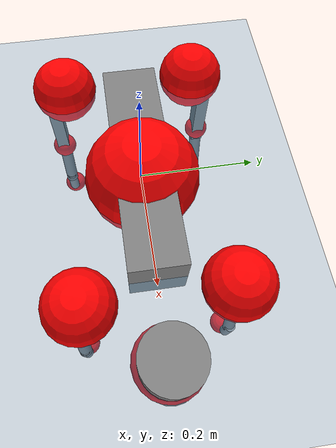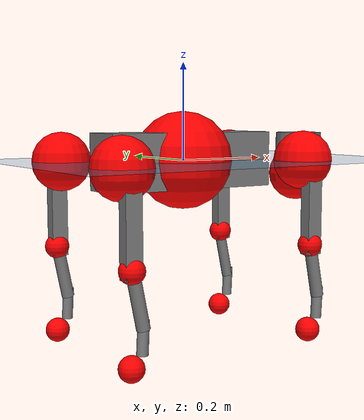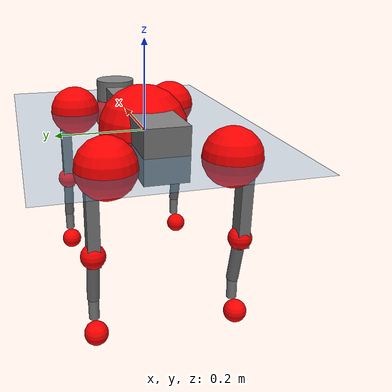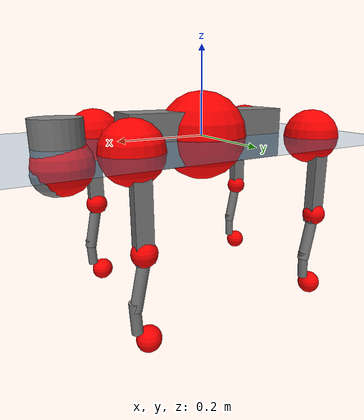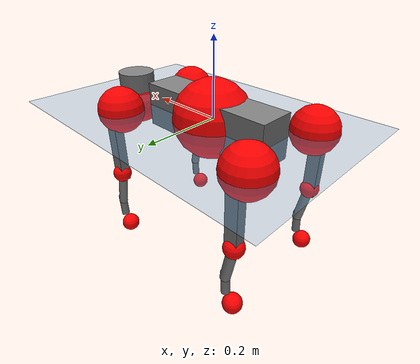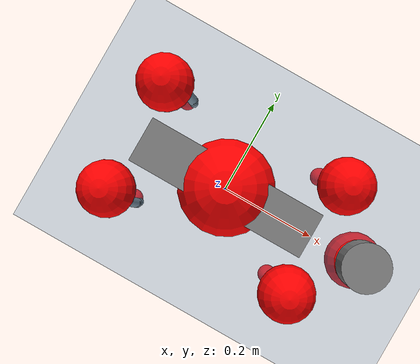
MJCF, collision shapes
<mujoco model="go2">
  <compiler angle="radian" assetdir="assets" balanceinertia="true" inertiafromgeom="false"/>

  <option timestep="0.005" density="1.2" viscosity="2e-05"/>

  <size nkey="1"/>

  <visual>
    <quality shadowsize="8192"/>
    <map shadowclip="0.5"/>
  </visual>

  <default>
    <default class="/">
      <geom contype="0" conaffinity="0" group="1" solref="-1000 -80"/>
      <site size="0.01 0.005 0.005" group="5"/>
      <general forcelimited="true" biastype="affine" gainprm="20" biasprm="0 -20 -0.5"/>
      <default class="go2">
        <joint armature="0.01" damping="0.01" frictionloss="0.2"/>
        <geom condim="1" margin="0.001"/>
        <default class="visual">
          <geom type="mesh" group="2"/>
        </default>
        <default class="collision">
          <geom group="3"/>
          <default class="foot">
            <geom size="0.022 0 0" condim="6" priority="1" friction="0.8 0.02 0.01" solimp="0.015 1 0.022"/>
          </default>
        </default>
        <default class="reward_collision_sphere">
          <geom group="5" rgba="1 0 0 1"/>
        </default>
      </default>
    </default>
  </default>

  <asset>
    <texture type="skybox" colorspace="auto" name="//unnamed_texture_0" builtin="gradient" rgb1="0.95 0.95 0.95" rgb2="0.95 0.95 0.95" width="100" height="600"/>
    <texture type="2d" colorspace="auto" name="texplane" builtin="checker" rgb1="0.345 0.575 0.748" rgb2="0.345 0.575 0.748" markrgb="1 1 1" width="512" height="512"/>
    <material name="MatPlane" class="/" texture="texplane" texuniform="true" texrepeat="2 2" specular="0.9"/>
    <material name="metal" class="/" rgba="0.9 0.95 0.95 1"/>
    <material name="black" class="/" rgba="0 0 0 1"/>
    <material name="white" class="/"/>
    <material name="gray" class="/" rgba="0.671705 0.692426 0.77427 1"/>
    <mesh name="base_0" class="/" file="base_0.obj"/>
    <mesh name="base_1" class="/" file="base_1.obj"/>
    <mesh name="base_2" class="/" file="base_2.obj"/>
    <mesh name="base_3" class="/" file="base_3.obj"/>
    <mesh name="base_4" class="/" file="base_4.obj"/>
    <mesh name="hip_0" class="/" file="hip_0.obj"/>
    <mesh name="hip_1" class="/" file="hip_1.obj"/>
    <mesh name="thigh_0" class="/" file="thigh_0.obj"/>
    <mesh name="thigh_1" class="/" file="thigh_1.obj"/>
    <mesh name="thigh_mirror_0" class="/" file="thigh_mirror_0.obj"/>
    <mesh name="thigh_mirror_1" class="/" file="thigh_mirror_1.obj"/>
    <mesh name="calf_0" class="/" file="calf_0.obj"/>
    <mesh name="calf_1" class="/" file="calf_1.obj"/>
    <mesh name="calf_mirror_0" class="/" file="calf_mirror_0.obj"/>
    <mesh name="calf_mirror_1" class="/" file="calf_mirror_1.obj"/>
    <mesh name="foot" class="/" file="foot.obj"/>
  </asset>

  <worldbody>
    <geom name="floor" class="/" size="100 100 0.125" type="plane" group="0" material="MatPlane"/>
    <light name="toplight_shadow" class="/" pos="0 0 5" dir="0.0990148 0.0990148 -0.990148" type="directional" ambient="0.04 0.04 0.04" diffuse="0.55 0.55 0.55" specular="0.12 0.12 0.12"/>
    <light name="toplight_fill" class="/" pos="0 0 5" dir="0.0990148 0.0990148 -0.990148" type="directional" castshadow="false" ambient="0.04 0.04 0.04" diffuse="0.3 0.3 0.3" specular="0.08 0.08 0.08"/>
    <body name="trunk" childclass="go2" pos="0.000384237 0.0026766 0.000651084" quat="1 -0.000265233 0.000489235 -0.000676055">
      <inertial pos="0.0230994 -3.33904e-05 -0.0045981" quat="0.0119314 0.716735 -0.000161198 0.697244" mass="7.37634" diaginertia="0.183484 0.15287 0.0106368"/>
      <joint name="//unnamed_joint_0" type="free" armature="0" damping="0" frictionloss="0"/>
      <geom name="//unnamed_geom_1" class="visual" material="black" mesh="base_0"/>
      <geom name="//unnamed_geom_2" class="visual" material="black" mesh="base_1"/>
      <geom name="//unnamed_geom_3" class="visual" material="black" mesh="base_2"/>
      <geom name="//unnamed_geom_4" class="visual" material="white" mesh="base_3"/>
      <geom name="//unnamed_geom_5" class="visual" material="gray" mesh="base_4"/>
      <geom name="trunk_1" class="collision" size="0.190724 0.0474023 0.0577953" type="box"/>
      <geom name="trunk_2" class="collision" size="0.0506976 0.0456278" pos="0.316299 0 0.00847834" type="cylinder"/>
      <geom name="trunk_3" class="collision" size="0.0476557" pos="0.325178 0 -0.05087"/>
      <geom name="//unnamed_geom_9" class="reward_collision_sphere" size="0.101395"/>
      <geom name="//unnamed_geom_10" class="reward_collision_sphere" size="0.0608371" pos="0.31075 0 -0.0381525"/>
      <site name="imu" pos="-0.0181324 -0.00184461 0.0393983" size="0.0101395"/>
      <camera name="track" pos="0 -2.1684 0" quat="0.707107 0.707107 0 0" mode="trackcom"/>
      <camera name="ego_camera" pos="0.346264 0 0.0381525" quat="-0.5 -0.5 0.5 0.5"/>
      <body name="FL_hip" pos="0.213585 0.0500742 -0.0016374" quat="1 0.000212672 0.000249548 -2.7194e-05">
        <inertial pos="-0.0058361 -0.000273697 0.000573741" quat="0.496871 0.499443 0.505563 0.498078" mass="0.702223" diaginertia="0.00148077 0.000882156 0.000212486"/>
        <joint name="FL_hip_joint" pos="0 0 0" axis="0.999949 0.00403251 -0.00926734" stiffness="0.0073281" range="-1.0371 1.0504" armature="0.0105342" damping="0.0145426" frictionloss="0.23082"/>
        <geom name="//unnamed_geom_11" class="visual" material="metal" mesh="hip_0"/>
        <geom name="//unnamed_geom_12" class="visual" material="gray" mesh="hip_1"/>
        <geom name="//unnamed_geom_13" class="collision" size="0.0466418 0.020279" pos="0 0.086736 0" quat="0.707107 0.707107 0 0" type="cylinder"/>
        <geom name="//unnamed_geom_14" class="reward_collision_sphere" size="0.0608371" pos="0 0.075894 0"/>
        <body name="FL_thigh" pos="-0.00263629 0.103599 -0.00154445" quat="0.999999 -0.00143208 0.00016994 -5.11327e-05">
          <inertial pos="-0.00394038 -0.0239536 -0.0266026" quat="0.826565 0.0874424 -0.00754414 0.555955" mass="1.15024" diaginertia="0.00959008 0.00845866 0.000377387"/>
          <joint name="FL_thigh_joint" pos="0 0 0" axis="0.0137247 0.999891 0.0054289" range="-1.51555 3.48791" armature="0.0107412" damping="0" frictionloss="0.176589"/>
          <geom name="//unnamed_geom_15" class="visual" material="metal" mesh="thigh_0"/>
          <geom name="//unnamed_geom_16" class="visual" material="gray" mesh="thigh_1"/>
          <geom name="//unnamed_geom_17" class="collision" size="0.107986 0.0124209 0.0172372" pos="0 0 -0.0902943" quat="0.707107 0 0.707107 0" type="box"/>
          <body name="FL_calf" pos="-0.00105064 0.00110275 -0.180126" quat="0.999999 0.000826349 8.07317e-05 -0.000596157">
            <inertial pos="0.00967292 -0.001947 -0.118186" quat="0.710476 0.000401504 -0.00430927 0.703708" mass="0.267509" diaginertia="0.0025338 0.00226427 2.37203e-05"/>
            <joint name="FL_calf_joint" pos="0 0 0" axis="0.0059086 0.99998 -0.00241488" stiffness="0.00746401" range="-2.72067 -0.849416" armature="0.0100875" damping="0" frictionloss="0.199933"/>
            <geom name="//unnamed_geom_18" class="visual" material="gray" mesh="calf_0"/>
            <geom name="//unnamed_geom_19" class="visual" material="black" mesh="calf_1"/>
            <geom name="FL_calf0" class="collision" size="0.0121674 0.0608371" pos="0.00887858 0 -0.05087" quat="0.994493 0 -0.104807 0" type="cylinder"/>
            <geom name="//unnamed_geom_21" class="collision" size="0.0111535 0.0329534" pos="0.0221964 0 -0.125479" quat="0.999688 0 0.0249974 0" type="cylinder"/>
            <geom name="//unnamed_geom_22" class="visual" pos="0 0 -0.180589" quat="1 0 0 0" material="black" mesh="foot"/>
            <geom name="FL_foot" class="foot" size="0.022511" pos="-0.00221964 0 -0.180589"/>
            <geom name="//unnamed_geom_24" class="reward_collision_sphere" size="0.0253488"/>
            <geom name="//unnamed_geom_25" class="reward_collision_sphere" size="0.0253488" pos="-0.00221964 0 -0.180589"/>
            <site name="FL_foot" class="foot" pos="-0.00221964 0 -0.180589" size="0.0101395"/>
          </body>
        </body>
      </body>
      <body name="FR_hip" pos="0.215822 -0.0515922 -2.2386e-05" quat="1 -3.48103e-05 4.44096e-05 4.61302e-05">
        <inertial pos="-0.00695516 0.000145127 0.000836261" quat="0.494962 0.510366 0.505863 0.48851" mass="0.706567" diaginertia="0.00149427 0.000862296 0.000209659"/>
        <joint name="FR_hip_joint" pos="0 0 0" axis="0.999997 -1.7364e-05 -0.00235354" stiffness="0.00107152" range="-1.04542 1.04662" armature="0.0101523" damping="0.00951381" frictionloss="0.19257"/>
        <geom name="//unnamed_geom_26" class="visual" pos="0 2.05912e-09 8.832e-08" quat="4.63268e-05 1 0 0" material="metal" mesh="hip_0"/>
        <geom name="//unnamed_geom_27" class="visual" pos="0 3.33809e-09 -2.18449e-07" quat="4.63268e-05 1 0 0" material="gray" mesh="hip_1"/>
        <geom name="//unnamed_geom_28" class="collision" size="0.0466418 0.020279" pos="0 -0.086736 0" quat="0.707107 0.707107 0 0" type="cylinder"/>
        <geom name="//unnamed_geom_29" class="reward_collision_sphere" size="0.0608371" pos="0 -0.075894 0"/>
        <body name="FR_thigh" pos="0.0006052 -0.104247 0.00303139" quat="1 -0.000106484 9.84852e-05 2.73698e-05">
          <inertial pos="-0.00679678 0.0224232 -0.0255492" quat="0.5508 -0.0184999 0.0857383 0.830016" mass="1.23729" diaginertia="0.0100989 0.00910097 0.000397669"/>
          <joint name="FR_thigh_joint" pos="0 0 0" axis="0.0091166 -0.999951 -0.00380033" stiffness="0.0114318" range="-3.49632 1.62594" armature="0.00897776" damping="0.00905484" frictionloss="0.215115"/>
          <geom name="//unnamed_geom_30" class="visual" material="metal" mesh="thigh_mirror_0"/>
          <geom name="//unnamed_geom_31" class="visual" material="gray" mesh="thigh_mirror_1"/>
          <geom name="//unnamed_geom_32" class="collision" size="0.107986 0.0124209 0.0172372" pos="0 0 -0.0902943" quat="0.707107 0 0.707107 0" type="box"/>
          <body name="FR_calf" pos="1.21547e-05 0.00235576 -0.179182" quat="1 -0.000297164 0.000413957 8.32869e-05">
            <inertial pos="0.00502146 -0.00159663 -0.118904" quat="0.70181 -0.00884388 0.00230013 0.712306" mass="0.246656" diaginertia="0.00257505 0.00219705 2.28158e-05"/>
            <joint name="FR_calf_joint" pos="0 0 0" axis="0.0118458 -0.999912 -0.00604023" range="0.846459 2.73393" armature="0.0103406" damping="0.00797095" frictionloss="0.208488"/>
            <geom name="//unnamed_geom_33" class="visual" material="gray" mesh="calf_mirror_0"/>
            <geom name="//unnamed_geom_34" class="visual" material="black" mesh="calf_mirror_1"/>
            <geom name="FR_calf0" class="collision" size="0.0131814 0.0608371" pos="0.0110982 0 -0.05087" quat="0.995004 0 -0.0998334 0" type="cylinder"/>
            <geom name="//unnamed_geom_36" class="collision" size="0.0111535 0.0329534" pos="0.0221964 0 -0.125479" quat="0.999688 0 0.0249974 0" type="cylinder"/>
            <geom name="//unnamed_geom_37" class="visual" pos="0 0 -0.180589" quat="1 0 0 0" material="black" mesh="foot"/>
            <geom name="FR_foot" class="foot" size="0.0195769" pos="-0.00221964 0 -0.180589"/>
            <geom name="//unnamed_geom_39" class="reward_collision_sphere" size="0.0253488"/>
            <geom name="//unnamed_geom_40" class="reward_collision_sphere" size="0.0253488" pos="-0.00221964 0 -0.180589"/>
            <site name="FR_foot" class="foot" pos="-0.00221964 0 -0.180589" size="0.0101395"/>
          </body>
        </body>
      </body>
      <body name="RL_hip" pos="-0.216979 0.0491 -0.002233" quat="1 7.56726e-05 0.000219242 -1.35404e-05">
        <inertial pos="0.00560779 0.00368152 -0.000113836" quat="0.50591 0.500659 0.494916 0.498452" mass="0.681638" diaginertia="0.00144989 0.000896622 0.000207903"/>
        <joint name="RL_hip_joint" pos="0 0 0" axis="-0.999909 -0.0019693 -0.0133693" range="-1.00593 1.09876" armature="0.0101837" damping="0.011633" frictionloss="0.177302"/>
        <geom name="//unnamed_geom_41" class="visual" pos="-2.28233e-09 0 -4.4739e-07" quat="4.63268e-05 0 1 0" material="metal" mesh="hip_0"/>
        <geom name="//unnamed_geom_42" class="visual" pos="-3.69993e-09 0 -3.96771e-07" quat="4.63268e-05 0 1 0" material="gray" mesh="hip_1"/>
        <geom name="//unnamed_geom_43" class="collision" size="0.0466418 0.020279" pos="0 0.086736 0" quat="0.707107 0.707107 0 0" type="cylinder"/>
        <geom name="//unnamed_geom_44" class="reward_collision_sphere" size="0.0608371" pos="0 0.075894 0"/>
        <body name="RL_thigh" pos="0.00255682 0.105686 -0.000712157" quat="0.999999 -0.000445222 -0.00113015 0.000595922">
          <inertial pos="-0.00270382 -0.0248718 -0.0286502" quat="0.827747 0.0783306 -0.0187713 0.55529" mass="1.25127" diaginertia="0.00997801 0.00887021 0.00040091"/>
          <joint name="RL_thigh_joint" pos="0 0 0" axis="0.000791203 1 -0.000578999" range="-0.481155 4.59014" armature="0.00999095" damping="0.0114944" frictionloss="0.212349"/>
          <geom name="//unnamed_geom_45" class="visual" material="metal" mesh="thigh_0"/>
          <geom name="//unnamed_geom_46" class="visual" material="gray" mesh="thigh_1"/>
          <geom name="//unnamed_geom_47" class="collision" size="0.107986 0.0124209 0.0172372" pos="0 0 -0.0902943" quat="0.707107 0 0.707107 0" type="box"/>
          <body name="RL_calf" pos="-0.00209074 0.000660031 -0.179838" quat="1 0.000280213 0.000380378 0.000553176">
            <inertial pos="0.00654556 -0.0011013 -0.121914" quat="0.717942 -0.00260764 -0.01172 0.695999" mass="0.250877" diaginertia="0.002534 0.00211328 2.29678e-05"/>
            <joint name="RL_calf_joint" pos="0 0 0" axis="-0.0154698 0.999754 0.0159029" range="-2.69179 -0.880806" armature="0.011014" damping="0" frictionloss="0.187924"/>
            <geom name="//unnamed_geom_48" class="visual" material="gray" mesh="calf_0"/>
            <geom name="//unnamed_geom_49" class="visual" material="black" mesh="calf_1"/>
            <geom name="RL_calf0" class="collision" size="0.0131814 0.0608371" pos="0.0110982 0 -0.05087" quat="0.995004 0 -0.0998334 0" type="cylinder"/>
            <geom name="//unnamed_geom_51" class="collision" size="0.0111535 0.0329534" pos="0.0221964 0 -0.125479" quat="0.999688 0 0.0249974 0" type="cylinder"/>
            <geom name="//unnamed_geom_52" class="visual" pos="0 0 -0.180589" quat="1 0 0 0" material="black" mesh="foot"/>
            <geom name="RL_foot" class="foot" size="0.0207115" pos="-0.00221964 0 -0.180589"/>
            <geom name="//unnamed_geom_54" class="reward_collision_sphere" size="0.0253488"/>
            <geom name="//unnamed_geom_55" class="reward_collision_sphere" size="0.0253488" pos="-0.00221964 0 -0.180589"/>
            <site name="RL_foot" class="foot" pos="-0.00221964 0 -0.180589" size="0.0101395"/>
          </body>
        </body>
      </body>
      <body name="RR_hip" pos="-0.213512 -0.0485846 -0.00312044" quat="0.999999 -0.000274408 -0.000676748 0.0010315">
        <inertial pos="0.00795494 0.000650841 -0.000433878" quat="0.501166 0.497682 0.496375 0.504735" mass="0.695507" diaginertia="0.00151691 0.000906534 0.000213831"/>
        <joint name="RR_hip_joint" pos="0 0 0" axis="-0.999989 0.00435217 -0.00181381" range="-1.04425 1.09614" armature="0.008882" damping="0.0198533" frictionloss="0.194871"/>
        <geom name="//unnamed_geom_56" class="visual" pos="2.28145e-09 2.05912e-09 -5.3571e-07" quat="2.14617e-09 4.63268e-05 4.63268e-05 -1" material="metal" mesh="hip_0"/>
        <geom name="//unnamed_geom_57" class="visual" pos="3.70213e-09 3.33809e-09 -1.78322e-07" quat="2.14617e-09 4.63268e-05 4.63268e-05 -1" material="gray" mesh="hip_1"/>
        <geom name="//unnamed_geom_58" class="collision" size="0.0466418 0.020279" pos="0 -0.086736 0" quat="0.707107 0.707107 0 0" type="cylinder"/>
        <geom name="//unnamed_geom_59" class="reward_collision_sphere" size="0.0608371" pos="0 -0.075894 0"/>
        <body name="RR_thigh" pos="-0.000131534 -0.10609 -0.000616265" quat="0.999999 -0.00082301 0.00107332 0.000493308">
          <inertial pos="-0.00228259 0.0249849 -0.025552" quat="0.555876 -0.0252353 0.0836887 0.826657" mass="1.16593" diaginertia="0.0100655 0.00880573 0.000374694"/>
          <joint name="RR_thigh_joint" pos="0 0 0" axis="0.0131054 -0.999797 0.0153325" range="-4.53943 0.575162" armature="0.010583" damping="0.00816363" frictionloss="0.174943"/>
          <geom name="//unnamed_geom_60" class="visual" material="metal" mesh="thigh_mirror_0"/>
          <geom name="//unnamed_geom_61" class="visual" material="gray" mesh="thigh_mirror_1"/>
          <geom name="//unnamed_geom_62" class="collision" size="0.107986 0.0124209 0.0172372" pos="0 0 -0.0902943" quat="0.707107 0 0.707107 0" type="box"/>
          <body name="RR_calf" pos="0.00191337 0.00070483 -0.181982" quat="1 0.000245408 0.00033953 -0.000363725">
            <inertial pos="0.00644395 0.00171346 -0.120417" quat="0.705603 -0.00182565 0.00178158 0.708602" mass="0.255404" diaginertia="0.00244819 0.00222029 2.34987e-05"/>
            <joint name="RR_calf_joint" pos="0 0 0" axis="0.00390077 -0.999989 -0.00255602" range="0.785377 2.71556" armature="0.0102268" damping="0.0212262" frictionloss="0.197085"/>
            <geom name="//unnamed_geom_63" class="visual" material="gray" mesh="calf_mirror_0"/>
            <geom name="//unnamed_geom_64" class="visual" material="black" mesh="calf_mirror_1"/>
            <geom name="RR_calf0" class="collision" size="0.0131814 0.0608371" pos="0.0110982 0 -0.05087" quat="0.995004 0 -0.0998334 0" type="cylinder"/>
            <geom name="//unnamed_geom_66" class="collision" size="0.0111535 0.0329534" pos="0.0221964 0 -0.125479" quat="0.999688 0 0.0249974 0" type="cylinder"/>
            <geom name="//unnamed_geom_67" class="visual" pos="0 0 -0.180589" quat="1 0 0 0" material="black" mesh="foot"/>
            <geom name="RR_foot" class="foot" size="0.0212343" pos="-0.00221964 0 -0.180589"/>
            <geom name="//unnamed_geom_69" class="reward_collision_sphere" size="0.0253488"/>
            <geom name="//unnamed_geom_70" class="reward_collision_sphere" size="0.0253488" pos="-0.00221964 0 -0.180589"/>
            <site name="RR_foot" class="foot" pos="-0.00221964 0 -0.180589" size="0.0101395"/>
          </body>
        </body>
      </body>
    </body>
  </worldbody>

  <contact>
    <pair class="/" geom1="floor" geom2="FL_foot" name="//unnamed_contact_0"/>
    <pair class="/" geom1="floor" geom2="FR_foot" name="//unnamed_contact_1"/>
    <pair class="/" geom1="floor" geom2="RL_foot" name="//unnamed_contact_2"/>
    <pair class="/" geom1="floor" geom2="RR_foot" name="//unnamed_contact_3"/>
  </contact>

  <actuator>
    <general name="FL_hip" class="/" joint="FL_hip_joint" forcerange="-24.2067 24.2067" gainprm="20.5808" biasprm="0 -20.5808 -0.534996"/>
    <general name="FL_thigh" class="/" joint="FL_thigh_joint" forcerange="-23.189 23.189" gainprm="20.5808" biasprm="0 -20.5808 -0.534996"/>
    <general name="FL_calf" class="/" joint="FL_calf_joint" forcerange="-50.8128 50.8128" gainprm="20.5808" biasprm="0 -20.5808 -0.534996"/>
    <general name="FR_hip" class="/" joint="FR_hip_joint" forcerange="-23.8 23.8" gainprm="20.5808" biasprm="0 -20.5808 -0.534996"/>
    <general name="FR_thigh" class="/" joint="FR_thigh_joint" forcerange="-23.9651 23.9651" gainprm="20.5808" biasprm="0 -20.5808 -0.534996"/>
    <general name="FR_calf" class="/" joint="FR_calf_joint" forcerange="-49.5901 49.5901" gainprm="20.5808" biasprm="0 -20.5808 -0.534996"/>
    <general name="RL_hip" class="/" joint="RL_hip_joint" forcerange="-23.6906 23.6906" gainprm="20.5808" biasprm="0 -20.5808 -0.534996"/>
    <general name="RL_thigh" class="/" joint="RL_thigh_joint" forcerange="-26.1753 26.1753" gainprm="20.5808" biasprm="0 -20.5808 -0.534996"/>
    <general name="RL_calf" class="/" joint="RL_calf_joint" forcerange="-41.3706 41.3706" gainprm="20.5808" biasprm="0 -20.5808 -0.534996"/>
    <general name="RR_hip" class="/" joint="RR_hip_joint" forcerange="-24.7714 24.7714" gainprm="20.5808" biasprm="0 -20.5808 -0.534996"/>
    <general name="RR_thigh" class="/" joint="RR_thigh_joint" forcerange="-26.0754 26.0754" gainprm="20.5808" biasprm="0 -20.5808 -0.534996"/>
    <general name="RR_calf" class="/" joint="RR_calf_joint" forcerange="-48.6109 48.6109" gainprm="20.5808" biasprm="0 -20.5808 -0.534996"/>
  </actuator>

  <sensor>
    <gyro site="imu" name="imu_angular_velocity"/>
    <velocimeter site="imu" name="imu_linear_velocity"/>
    <framelinvel objtype="site" objname="FL_foot" name="FL_foot_global_linear_velocity"/>
    <framelinvel objtype="site" objname="FR_foot" name="FR_foot_global_linear_velocity"/>
    <framelinvel objtype="site" objname="RL_foot" name="RL_foot_global_linear_velocity"/>
    <framelinvel objtype="site" objname="RR_foot" name="RR_foot_global_linear_velocity"/>
  </sensor>

  <keyframe>
    <key name="home" qpos="0 0 0.325 1 0 0 0 0.1 0.8 -1.5 -0.1 -0.8 1.5 -0.1 0.8 -1.5 0.1 -0.8 1.5"/>
  </keyframe>
</mujoco>
